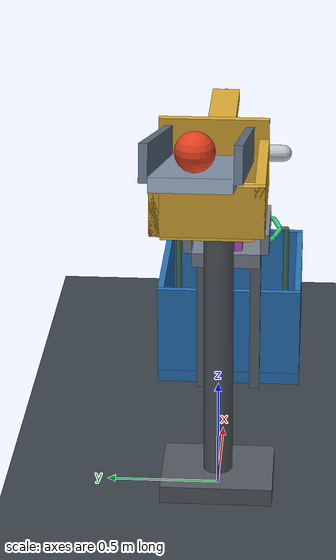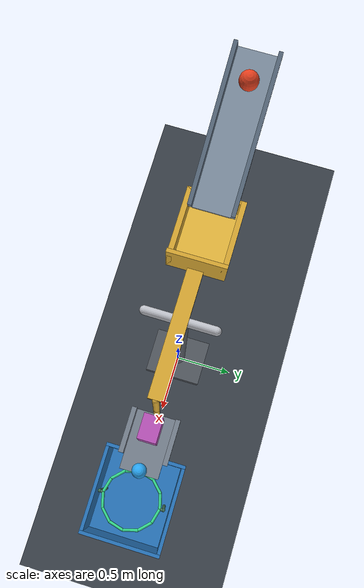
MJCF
<mujoco model="ramp_balance_hoop_cup">
  <compiler angle="radian" autolimits="true"/>
  <option timestep="0.002" gravity="0 0 -9.81" integrator="implicitfast" iterations="80"/>
  <size njmax="2000" nconmax="400"/>
  <visual>
    <headlight ambient="0.35 0.35 0.35" diffuse="0.65 0.65 0.65" specular="0.15 0.15 0.15"/>
  </visual>

  <worldbody>
    <light name="overhead" pos="-0.5 -2 5" dir="0.1 0.3 -1"/>
    <camera name="overview" pos="3.8 -6 3.4" xyaxes="0.85 0.53 0 -0.21 0.34 0.92"/>

    <geom name="floor" type="plane" size="5 4 0.1" rgba="0.22 0.25 0.28 1" friction="0.8 0.01 0.002" solref="0.008 1"/>

    <!-- The initial ball contact point is 0.9 m along the ramp from its downhill end. -->
    <body name="ramp" pos="-1.282376 0 2.011608" quat="0.988771078 0 0.149438132 0">
      <geom name="ramp_surface" type="box" size="0.56 0.14 0.025" rgba="0.55 0.62 0.70 1" friction="0.65 0.002 0.0003" condim="6" solref="0.008 1"/>
      <geom name="ramp_left_rail" type="box" pos="0 -0.155 0.07" size="0.56 0.015 0.065" rgba="0.38 0.45 0.53 1" friction="0.5 0.002 0.0003"/>
      <geom name="ramp_right_rail" type="box" pos="0 0.155 0.07" size="0.56 0.015 0.065" rgba="0.38 0.45 0.53 1" friction="0.5 0.002 0.0003"/>
    </body>

    <body name="ball1" pos="-1.579116 0 2.2035">
      <freejoint name="ball1_free"/>
      <geom name="ball1_sphere" type="sphere" size="0.07" mass="0.70" rgba="0.90 0.25 0.12 1" friction="0.6 0.002 0.0003" condim="6" solref="0.008 1" solimp="0.95 0.99 0.001"/>
    </body>

    <body name="balance_support">
      <geom name="balance_support_post" type="cylinder" pos="0 0 0.75" size="0.065 0.75" rgba="0.32 0.34 0.37 1"/>
      <geom name="balance_support_foot" type="box" pos="0 0 0.04" size="0.20 0.25 0.04" rgba="0.32 0.34 0.37 1"/>
      <geom name="balance_support_axle" type="capsule" fromto="0 -0.27 1.6 0 0.27 1.6" size="0.035" contype="0" conaffinity="0" rgba="0.75 0.76 0.79 1"/>
    </body>

    <!-- The right end is a downward crank: lowering the receiver moves the striker finger rightward and upward. -->
    <body name="balance" pos="0 0 1.6">
      <inertial pos="0.12 0 -0.12" mass="0.25" diaginertia="0.018 0.055 0.050"/>
      <joint name="balance_hinge" type="hinge" axis="0 1 0" range="-0.4 0" damping="0.45" frictionloss="0.03" solreflimit="0.004 1"/>
      <geom name="balance_beam" type="box" pos="0.10 0 0.045" size="0.50 0.06 0.025" rgba="0.85 0.66 0.20 1" friction="0.8 0.005 0.001" solref="0.008 1"/>
      <geom name="balance_recess_floor" type="box" pos="-0.64 0 0" size="0.24 0.18 0.025" rgba="0.90 0.72 0.24 1" friction="0.8 0.005 0.001" condim="6" solref="0.008 1"/>
      <geom name="balance_recess_back" type="box" pos="-0.895 0 0.105" size="0.015 0.22 0.105" rgba="0.85 0.66 0.20 1" friction="0.8 0.005 0.001" solref="0.008 1"/>
      <geom name="balance_recess_front" type="box" pos="-0.385 0 0.145" size="0.015 0.22 0.145" rgba="0.85 0.66 0.20 1" friction="0.8 0.005 0.001" solref="0.008 1"/>
      <geom name="balance_recess_side_neg" type="box" pos="-0.64 -0.20 0.105" size="0.27 0.02 0.105" rgba="0.85 0.66 0.20 1" friction="0.8 0.005 0.001" solref="0.008 1"/>
      <geom name="balance_recess_side_pos" type="box" pos="-0.64 0.20 0.105" size="0.27 0.02 0.105" rgba="0.85 0.66 0.20 1" friction="0.8 0.005 0.001" solref="0.008 1"/>
      <geom name="balance_right_crank" type="capsule" fromto="0.60 0 0.045 0.62 0 -0.70" size="0.025" rgba="0.85 0.66 0.20 1" friction="0.12 0.002 0.0003" solref="0.008 1"/>
      <geom name="balance_striker_finger" type="capsule" fromto="0.62 0 -0.73 0.62 0 -0.48" size="0.025" rgba="0.95 0.77 0.27 1" friction="0.12 0.002 0.0003" solref="0.008 1"/>
    </body>

    <body name="striker_support">
      <geom name="striker_support_shelf" type="box" pos="0.875 0 0.815" size="0.245 0.16 0.035" rgba="0.46 0.50 0.55 1" friction="0.12 0.002 0.0003" solref="0.008 1"/>
      <geom name="striker_support_leg_neg" type="box" pos="0.94 -0.13 0.39" size="0.025 0.025 0.39" rgba="0.35 0.39 0.43 1"/>
      <geom name="striker_support_leg_pos" type="box" pos="0.94 0.13 0.39" size="0.025 0.025 0.39" rgba="0.35 0.39 0.43 1"/>
      <geom name="striker_support_guide_neg" type="box" pos="0.815 -0.18 0.90" size="0.185 0.02 0.05" rgba="0.46 0.50 0.55 1" friction="0.1 0.002 0.0003"/>
      <geom name="striker_support_guide_pos" type="box" pos="0.815 0.18 0.90" size="0.185 0.02 0.05" rgba="0.46 0.50 0.55 1" friction="0.1 0.002 0.0003"/>
    </body>

    <body name="block" pos="0.77 0 1.05">
      <freejoint name="block_free"/>
      <geom name="block_box" type="box" size="0.10 0.075 0.20" mass="0.18" rgba="0.72 0.32 0.72 1" friction="0.15 0.004 0.0005" solref="0.008 1" solimp="0.95 0.99 0.001"/>
    </body>

    <body name="ball2" pos="1.095 0 0.9105">
      <freejoint name="ball2_free"/>
      <geom name="ball2_sphere" type="sphere" size="0.06" mass="0.045" rgba="0.16 0.65 0.95 1" friction="0.8 0.01 0.004" condim="6" solref="0.008 1" solimp="0.95 0.99 0.001"/>
    </body>

    <!-- A horizontal, open ring made entirely from primitive capsules. -->
    <body name="hoop" pos="1.34 0 0.68">
      <geom name="hoop_segment_01" type="capsule" fromto="0.24 0 0 0.207846 0.12 0" size="0.012" rgba="0.20 0.85 0.55 1" friction="0.5 0.005 0.001" solref="0.008 1"/>
      <geom name="hoop_segment_02" type="capsule" fromto="0.207846 0.12 0 0.12 0.207846 0" size="0.012" rgba="0.20 0.85 0.55 1" friction="0.5 0.005 0.001" solref="0.008 1"/>
      <geom name="hoop_segment_03" type="capsule" fromto="0.12 0.207846 0 0 0.24 0" size="0.012" rgba="0.20 0.85 0.55 1" friction="0.5 0.005 0.001" solref="0.008 1"/>
      <geom name="hoop_segment_04" type="capsule" fromto="0 0.24 0 -0.12 0.207846 0" size="0.012" rgba="0.20 0.85 0.55 1" friction="0.5 0.005 0.001" solref="0.008 1"/>
      <geom name="hoop_segment_05" type="capsule" fromto="-0.12 0.207846 0 -0.207846 0.12 0" size="0.012" rgba="0.20 0.85 0.55 1" friction="0.5 0.005 0.001" solref="0.008 1"/>
      <geom name="hoop_segment_06" type="capsule" fromto="-0.207846 0.12 0 -0.24 0 0" size="0.012" rgba="0.20 0.85 0.55 1" friction="0.5 0.005 0.001" solref="0.008 1"/>
      <geom name="hoop_segment_07" type="capsule" fromto="-0.24 0 0 -0.207846 -0.12 0" size="0.012" rgba="0.20 0.85 0.55 1" friction="0.5 0.005 0.001" solref="0.008 1"/>
      <geom name="hoop_segment_08" type="capsule" fromto="-0.207846 -0.12 0 -0.12 -0.207846 0" size="0.012" rgba="0.20 0.85 0.55 1" friction="0.5 0.005 0.001" solref="0.008 1"/>
      <geom name="hoop_segment_09" type="capsule" fromto="-0.12 -0.207846 0 0 -0.24 0" size="0.012" rgba="0.20 0.85 0.55 1" friction="0.5 0.005 0.001" solref="0.008 1"/>
      <geom name="hoop_segment_10" type="capsule" fromto="0 -0.24 0 0.12 -0.207846 0" size="0.012" rgba="0.20 0.85 0.55 1" friction="0.5 0.005 0.001" solref="0.008 1"/>
      <geom name="hoop_segment_11" type="capsule" fromto="0.12 -0.207846 0 0.207846 -0.12 0" size="0.012" rgba="0.20 0.85 0.55 1" friction="0.5 0.005 0.001" solref="0.008 1"/>
      <geom name="hoop_segment_12" type="capsule" fromto="0.207846 -0.12 0 0.24 0 0" size="0.012" rgba="0.20 0.85 0.55 1" friction="0.5 0.005 0.001" solref="0.008 1"/>
      <geom name="hoop_support_neg" type="capsule" fromto="0 -0.27 -0.68 0 -0.27 0" size="0.014" rgba="0.25 0.45 0.35 1"/>
      <geom name="hoop_support_pos" type="capsule" fromto="0 0.27 -0.68 0 0.27 0" size="0.014" rgba="0.25 0.45 0.35 1"/>
      <geom name="hoop_bracket_neg" type="capsule" fromto="0 -0.27 0 0 -0.24 0" size="0.012" rgba="0.25 0.45 0.35 1"/>
      <geom name="hoop_bracket_pos" type="capsule" fromto="0 0.24 0 0 0.27 0" size="0.012" rgba="0.25 0.45 0.35 1"/>
    </body>

    <body name="cup" pos="1.34 0 0">
      <geom name="cup_bottom" type="box" pos="0 0 0.04" size="0.39 0.35 0.03" rgba="0.15 0.45 0.72 1" friction="0.9 0.02 0.008" condim="6" solref="0.008 1" solimp="0.95 0.99 0.001"/>
      <geom name="cup_wall_left" type="box" pos="-0.375 0 0.29" size="0.015 0.35 0.22" rgba="0.15 0.45 0.72 1" friction="0.9 0.02 0.008" condim="6" solref="0.008 1"/>
      <geom name="cup_wall_right" type="box" pos="0.375 0 0.29" size="0.015 0.35 0.22" rgba="0.15 0.45 0.72 1" friction="0.9 0.02 0.008" condim="6" solref="0.008 1"/>
      <geom name="cup_wall_front" type="box" pos="0 -0.335 0.29" size="0.36 0.015 0.22" rgba="0.15 0.45 0.72 1" friction="0.9 0.02 0.008" condim="6" solref="0.008 1"/>
      <geom name="cup_wall_back" type="box" pos="0 0.335 0.29" size="0.36 0.015 0.22" rgba="0.15 0.45 0.72 1" friction="0.9 0.02 0.008" condim="6" solref="0.008 1"/>
    </body>
  </worldbody>
</mujoco>
